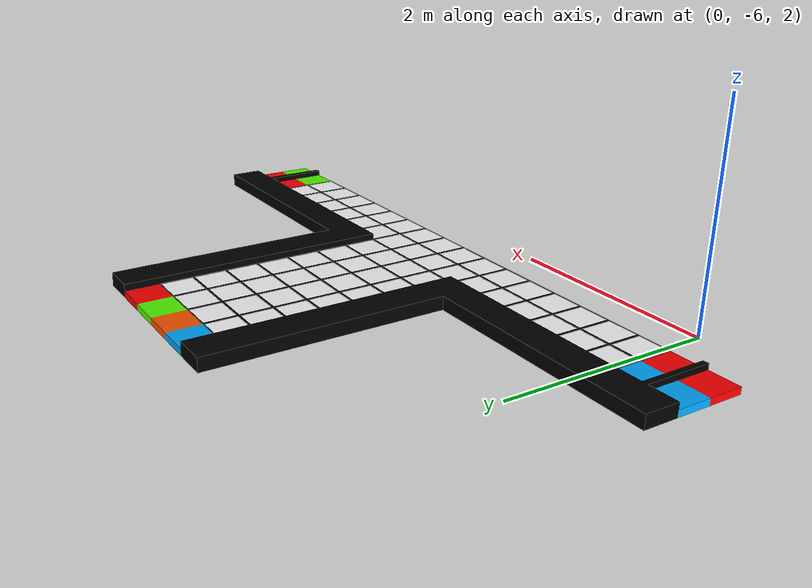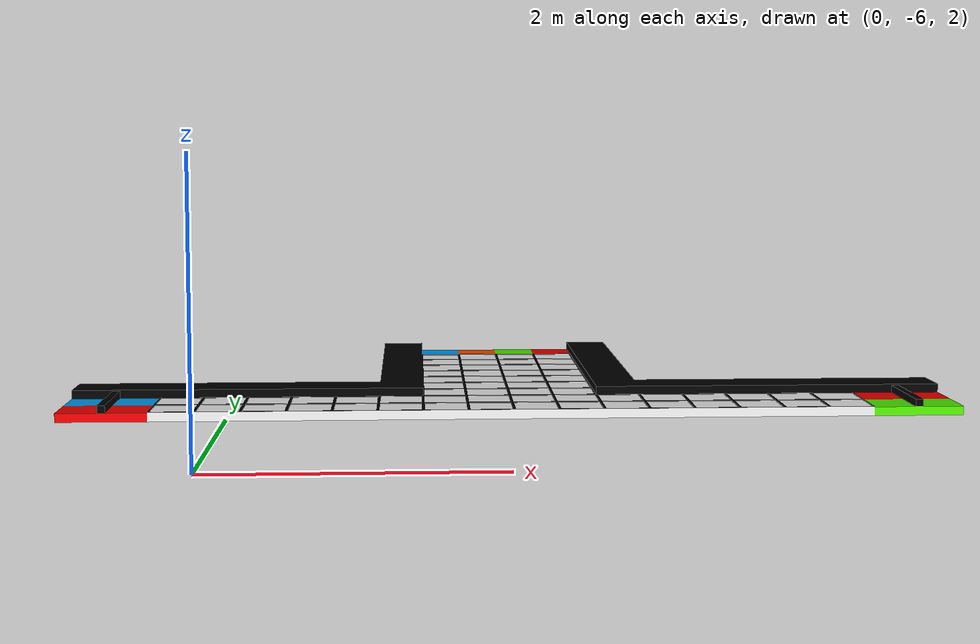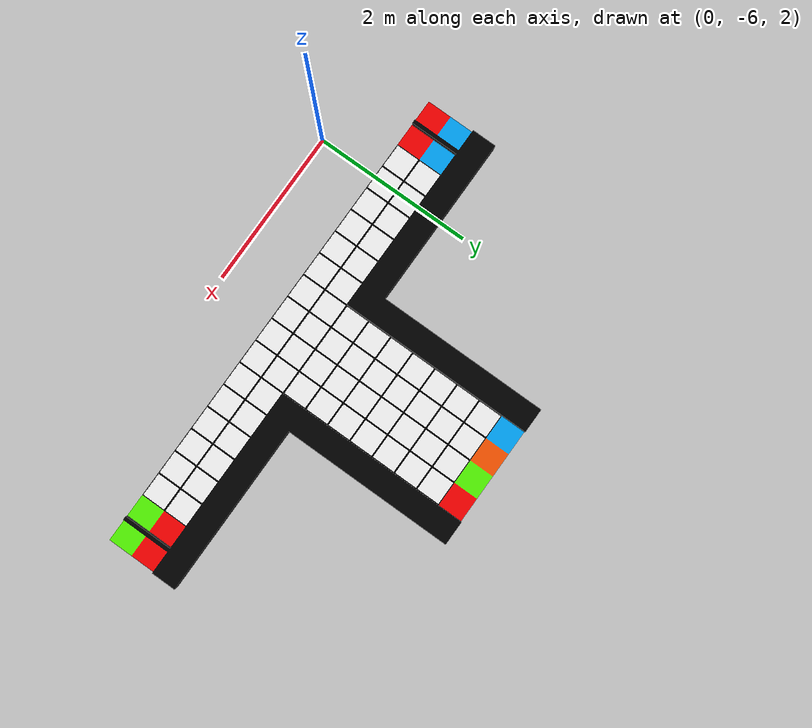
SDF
<?xml version='1.0'?>
<sdf version='1.6'>

  <model name='arena'>

    <static>true</static>

    <link name='link_0'>

      <pose>0 0 0 0 0 0</pose>

      <self_collide>false</self_collide>
      <enable_wind>false</enable_wind>
      <kinematic>false</kinematic>
      <gravity>true</gravity>

      <inertial>
        <mass>1.0</mass>

        <pose>0 0 0 0 0 0</pose>

        <inertia>
          <ixx>1.0</ixx>
          <ixy>0.0</ixy>
          <ixz>0.0</ixz>
          <iyy>1.0</iyy>
          <iyz>0.0</iyz>
          <izz>1.0</izz>
        </inertia>
      </inertial>

      <visual name='visual'>

        <pose>0 0 0 0 0 0</pose>

        <geometry>
          <mesh>
            <uri>model://arena/meshes/arena.dae</uri>
            <scale>2 2 2</scale>
          </mesh>
        </geometry>

        <transparency>0</transparency>
        <cast_shadows>false</cast_shadows>

      </visual>

      <collision name='collision'>

        <geometry>
          <mesh>
            <uri>model://arena/meshes/arena.dae</uri>
            <scale>2 2 2</scale>
          </mesh>
        </geometry>

      </collision>

    </link>

    <allow_auto_disable>true</allow_auto_disable>

  </model>

</sdf>
